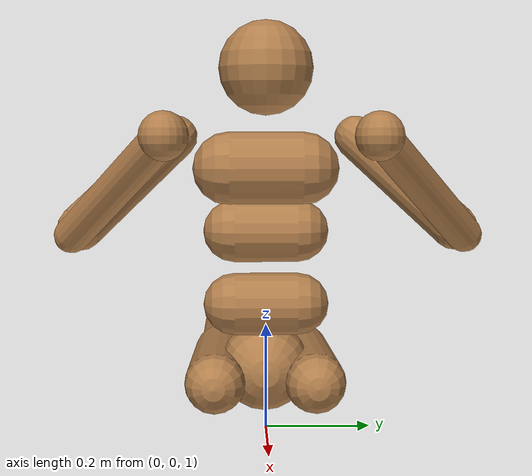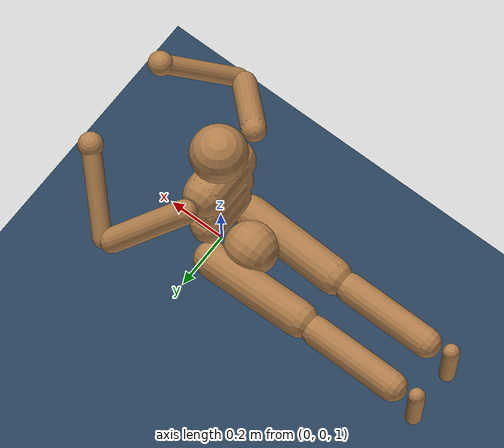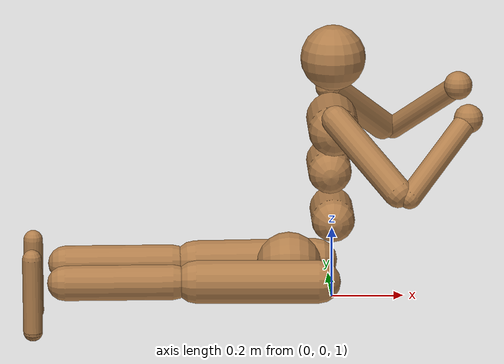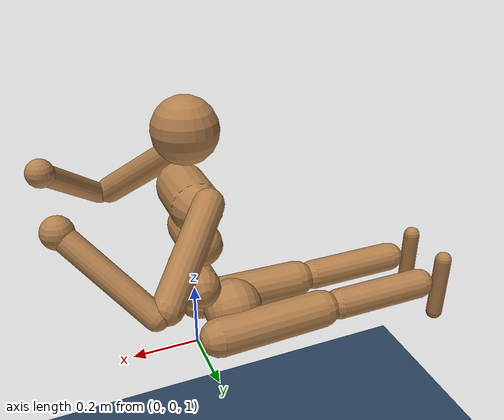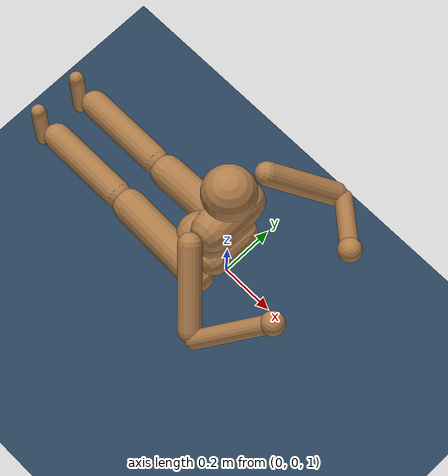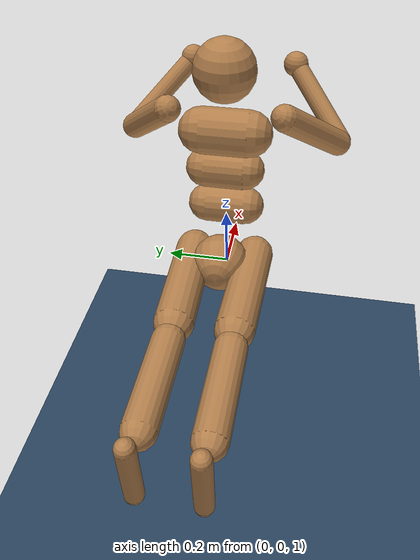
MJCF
<mujoco model="humanoid">
  <include file="common/visual.xml"/>
  <include file="common/skybox.xml"/>
  <include file="common/materials.xml"/>

  <option timestep="0.005"/>

  <default>
    <motor ctrlrange="-1 1" ctrllimited="true"/>
    <default class="body">
      <geom  type="capsule" condim="1" friction=".7" solimp=".9 .99 .003" solref=".015 1" material="self"/>
      <joint type="hinge" damping=".1" stiffness="5" armature=".007" limited="true" solimplimit="0 .99 .01"/>
      <default class="big_joint">
        <joint damping="5" stiffness="10" armature=".01"/>
      </default>
      <default class="small_joint">
        <joint damping="2" stiffness="5" armature=".006"/>
      </default>
      <site size=".04" group="3"/>
    </default>
  </default>

  <worldbody>
    <geom name="floor" type="plane" conaffinity="1" size="100 100 .2" material="grid"/>
    <body name="torso" pos="0 0 1.5" childclass="body">
      <light name="top" pos="0 0 2" mode="trackcom"/>
      <camera name="back" pos="-3 0 1" xyaxes="0 -1 0 1 0 2" mode="trackcom"/>
      <camera name="side" pos="0 -3 1" xyaxes="1 0 0 0 1 2" mode="trackcom"/>
      <geom name="torso" fromto="0 -.07 0 0 .07 0" size=".07"/>
      <geom name="waist_upper" fromto="-.01 -.06 -.12 -.01 .06 -.12" size=".06"/>
      <body name="head" pos="0 0 .19">
        <geom name="head" type="sphere" size=".09"/>
        <camera name="egocentric" pos=".09 0 0" xyaxes="0 -1 0 .1 0 1" fovy="80"/>
      </body>
      <body name="waist_lower" pos="0 0 -.260" zaxis="0 0 1">
        <geom name="waist_lower" fromto="0 -.06 0 0 .06 0" size=".06"/>
        <joint name="abdomen_z" pos="0 0 .065" axis="0 0 1" range="-45 45" class="small_joint"/>
        <joint name="abdomen_y" pos="0 0 .065" axis="0 1 0" range="-75 30" class="big_joint"/>
        <body name="pelvis" pos="0 0 -.165" zaxis="1 0 0">
          <joint name="abdomen_x" pos="0 0 .1" axis="1 0 0" range="-35 35" class="big_joint"/>
          <geom name="butt" type="sphere" size=".09" pos="-.02 0 -.12"/>
          <body name="thigh_right" pos="0 -.1 -.04">
            <joint name="hip_x_right" axis="1 0 0" range="-25 5"  class="big_joint"/>
            <joint name="hip_z_right" axis="0 0 1" range="-60 35" class="big_joint"/>
            <joint name="hip_y_right" axis="0 1 0" range="-110 20" class="big_joint"/>
            <geom name="thigh_right" fromto="0 0 0 0 .01 -.34" size=".06"/>
            <body name="shin_right" pos="0 .01 -.403">
              <joint name="knee_right" axis="0 -1 0" range="-160 -2"/>
              <geom name="shin_right" fromto="0 0 0 0 0 -.3"  size=".049"/>
              <body name="foot_right" pos="0 0 -.39">
                <joint name="ankle_y_right" axis="0 1 0" range="-50 50" class="small_joint"/>
                <joint name="ankle_x_right" axis="1 0 0" range="-50 50" class="small_joint"/>
                <geom name="foot1_right" type="capsule" fromto="-.07 0 0 .14 0 0"  size=".027"/>
                <geom name="foot2_right" type="sphere" pos=".14 0 0"  size=".027"/>
              </body>
            </body>
          </body>
          <body name="thigh_left" pos="0 .1 -.04">
            <joint name="hip_x_left" axis="-1 0 0" range="-25 5"  class="big_joint"/>
            <joint name="hip_z_left" axis="0 0 -1" range="-60 35" class="big_joint"/>
            <joint name="hip_y_left" axis="0 1 0" range="-110 20" class="big_joint"/>
            <geom name="thigh_left" fromto="0 0 0 0 -.01 -.34" size=".06"/>
            <body name="shin_left" pos="0 -.01 -.403">
              <joint name="knee_left" axis="0 -1 0" range="-160 -2"/>
              <geom name="shin_left" fromto="0 0 0 0 0 -.3"  size=".049"/>
              <body name="foot_left" pos="0 0 -.39">
                <joint name="ankle_y_left" axis="0 1 0" range="-50 50" class="small_joint"/>
                <joint name="ankle_x_left" axis="-1 0 0" range="-50 50" class="small_joint"/>
                <geom name="foot1_left" type="capsule" fromto="-.07 0 0 .14 0 0"  size=".027"/>
                <geom name="foot2_left" type="sphere" pos=".14 0 0"  size=".027"/>
              </body>
            </body>
          </body>
        </body>
      </body>
      <body name="upper_arm_right" pos="0 -.17 .06">
        <joint name="shoulder1_right" axis="2 1 1" range="-85 60" class="big_joint"/>
        <joint name="shoulder2_right" axis="0 -1 1" range="-85 60" class="big_joint"/>
        <geom name="upper_arm_right" fromto="0 0 0 .16 -.16 -.16" size=".04"/>
        <body name="lower_arm_right" pos=".18 -.18 -.18">
          <joint name="elbow_right" axis="0 -1 1" range="-90 50" class="big_joint"/>
          <geom name="lower_arm_right" fromto=".01 .01 .01 .17 .17 .17" size=".031"/>
          <body name="hand_right" pos=".18 .18 .18">
            <geom name="hand_right" type="sphere" size=".04"/>
          </body>
        </body>
      </body>
      <body name="upper_arm_left" pos="0 .17 .06">
        <joint name="shoulder1_left" axis="2 -1 1" range="-60 85" class="big_joint"/>
        <joint name="shoulder2_left" axis="0 1 1" range="-60 85" class="big_joint"/>
        <geom name="upper_arm_left" fromto="0 0 0 .16 .16 -.16" size=".04"/>
        <body name="lower_arm_left" pos=".18 .18 -.18">
          <joint name="elbow_left" axis="0 1 1" range="-90 50" class="big_joint"/>
          <geom name="lower_arm_left" fromto=".01 -.01 .01 .17 -.17 .17" size=".031"/>
          <body name="hand_left" pos=".18 -.18 .18">
            <geom name="hand_left" type="sphere" size=".04"/>
          </body>
        </body>
      </body>
    </body>
  </worldbody>

  <actuator>
    <motor name="abdomen_y"       gear="40"  joint="abdomen_y"/>
    <motor name="abdomen_z"       gear="40"  joint="abdomen_z"/>
    <motor name="abdomen_x"       gear="40"  joint="abdomen_x"/>
    <motor name="hip_x_right"     gear="40"  joint="hip_x_right"/>
    <motor name="hip_z_right"     gear="40"  joint="hip_z_right"/>
    <motor name="hip_y_right"     gear="120" joint="hip_y_right"/>
    <motor name="knee_right"      gear="80"  joint="knee_right"/>
    <motor name="ankle_x_right"   gear="20"  joint="ankle_x_right"/>
    <motor name="ankle_y_right"   gear="20"  joint="ankle_y_right"/>
    <motor name="hip_x_left"      gear="40"  joint="hip_x_left"/>
    <motor name="hip_z_left"      gear="40"  joint="hip_z_left"/>
    <motor name="hip_y_left"      gear="120" joint="hip_y_left"/>
    <motor name="knee_left"       gear="80"  joint="knee_left"/>
    <motor name="ankle_x_left"    gear="20"  joint="ankle_x_left"/>
    <motor name="ankle_y_left"    gear="20"  joint="ankle_y_left"/>
    <motor name="shoulder1_right" gear="20"  joint="shoulder1_right"/>
    <motor name="shoulder2_right" gear="20"  joint="shoulder2_right"/>
    <motor name="elbow_right"     gear="40"  joint="elbow_right"/>
    <motor name="shoulder1_left"  gear="20"  joint="shoulder1_left"/>
    <motor name="shoulder2_left"  gear="20"  joint="shoulder2_left"/>
    <motor name="elbow_left"      gear="40"  joint="elbow_left"/>
  </actuator>
</mujoco>

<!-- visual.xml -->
<mujoco>
  <visual>
    <headlight ambient=".4 .4 .4" diffuse=".8 .8 .8" specular="0.1 0.1 0.1"/>
    <map znear="0.02"/>
  </visual>
</mujoco>

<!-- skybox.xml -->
<mujoco>
  <asset>
    <texture type="skybox" builtin="gradient" rgb1=".4 .5 .6" rgb2="0 0 0"
        width="100" height="100"/>
  </asset>
</mujoco>

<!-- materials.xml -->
<mujoco>
  <asset>
    <texture name="grid" type="2d" builtin="checker" rgb1=".1 .2 .3"
        rgb2=".2 .3 .4" width="300" height="300" mark="edge" markrgb=".2 .3 .4"/>
    <material name="grid" texture="grid" texrepeat="2 2" texuniform="true"
        reflectance=".2"/>
    <material name="self" rgba=".7 .5 .3 1"/>
  </asset>
</mujoco>
